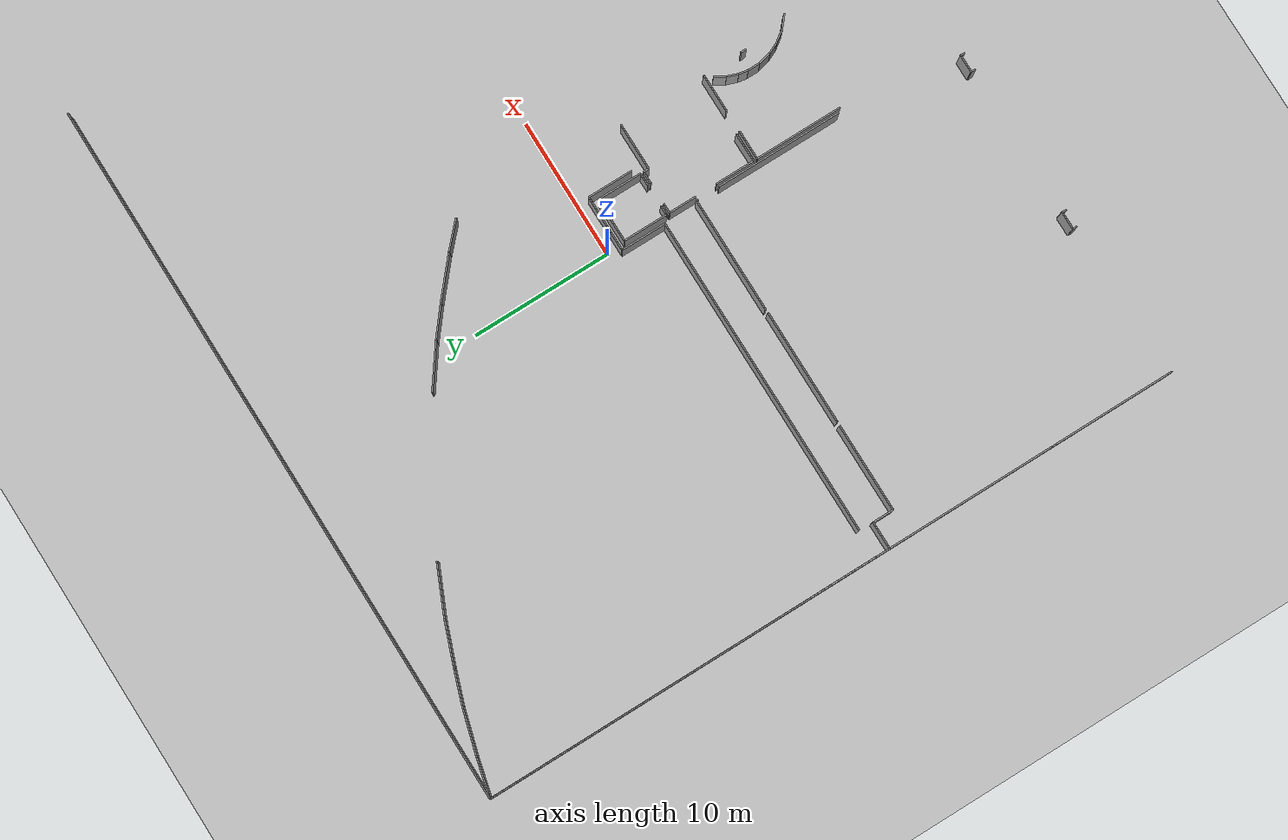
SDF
<sdf version="1.6">
 <world name="default">
  <model name="ground_plane">
   <static>1</static>
   <link name="link">
    <collision name="collision">
     <geometry><plane><normal>0 0 1</normal><size>100 100</size></plane></geometry>
     <surface><friction><ode><mu>100</mu><mu2>50</mu2></ode></friction></surface>
    </collision>
    <visual name="visual">
     <cast_shadows>0</cast_shadows>
     <geometry><plane><normal>0 0 1</normal><size>100 100</size></plane></geometry>
     <material>
      <script><uri>file://media/materials/scripts/gazebo.material</uri><name>Gazebo/Grey</name></script>
     </material>
    </visual>
   </link>
  </model>
  <model name="50041194">
   <static>1</static>
   <link name="Wall_0">
    <collision name="Wall_0_Collision">
     <geometry><box><size>28.5608519399 0.1 2.5</size></box></geometry>
     <pose>14.2804259699 0 1.25 0 0 0</pose>
    </collision>
    <visual name="Wall_0_Visual">
     <pose>14.2804259699 0 1.25 0 0 0</pose>
     <geometry><box><size>28.5608519399 0.1 2.5</size></box></geometry>
     <material>
      <script><uri>file://media/materials/scripts/gazebo.material</uri><name>Gazebo/Grey</name></script>
      <ambient>1 1 1 1</ambient>
     </material>
    </visual>
    <pose>0.00902263282967 -28.5608519399 0 0 0 1.57079632679</pose>
   </link>
   <link name="Wall_1">
    <collision name="Wall_1_Collision">
     <geometry><box><size>2.74540686243 0.1 2.5</size></box></geometry>
     <pose>1.37270343121 0 1.25 0 0 0</pose>
    </collision>
    <visual name="Wall_1_Visual">
     <pose>1.37270343121 0 1.25 0 0 0</pose>
     <geometry><box><size>2.74540686243 0.1 2.5</size></box></geometry>
     <material>
      <script><uri>file://media/materials/scripts/gazebo.material</uri><name>Gazebo/Grey</name></script>
      <ambient>1 1 1 1</ambient>
     </material>
    </visual>
    <pose>0.00902263282967 -0.0 0 0 0 -0.241682561469</pose>
   </link>
   <link name="Wall_2">
    <collision name="Wall_2_Collision">
     <geometry><box><size>3.28572289443 0.1 2.5</size></box></geometry>
     <pose>1.64286144721 0 1.25 0 0 0</pose>
    </collision>
    <visual name="Wall_2_Visual">
     <pose>1.64286144721 0 1.25 0 0 0</pose>
     <geometry><box><size>3.28572289443 0.1 2.5</size></box></geometry>
     <material>
      <script><uri>file://media/materials/scripts/gazebo.material</uri><name>Gazebo/Grey</name></script>
      <ambient>1 1 1 1</ambient>
     </material>
    </visual>
    <pose>2.67463877699 -0.657076412805 0 0 0 -0.278561038296</pose>
   </link>
   <link name="Wall_3">
    <collision name="Wall_3_Collision">
     <geometry><box><size>2.48383758283 0.1 2.5</size></box></geometry>
     <pose>1.24191879142 0 1.25 0 0 0</pose>
    </collision>
    <visual name="Wall_3_Visual">
     <pose>1.24191879142 0 1.25 0 0 0</pose>
     <geometry><box><size>2.48383758283 0.1 2.5</size></box></geometry>
     <material>
      <script><uri>file://media/materials/scripts/gazebo.material</uri><name>Gazebo/Grey</name></script>
      <ambient>1 1 1 1</ambient>
     </material>
    </visual>
    <pose>5.8337039814 -1.56055965739 0 0 0 -0.337022508484</pose>
   </link>
   <link name="Wall_4">
    <collision name="Wall_4_Collision">
     <geometry><box><size>3.13700223776 0.1 2.5</size></box></geometry>
     <pose>1.56850111888 0 1.25 0 0 0</pose>
    </collision>
    <visual name="Wall_4_Visual">
     <pose>1.56850111888 0 1.25 0 0 0</pose>
     <geometry><box><size>3.13700223776 0.1 2.5</size></box></geometry>
     <material>
      <script><uri>file://media/materials/scripts/gazebo.material</uri><name>Gazebo/Grey</name></script>
      <ambient>1 1 1 1</ambient>
     </material>
    </visual>
    <pose>8.17780940641 -2.38191152737 0 0 0 -0.361717875042</pose>
   </link>
   <link name="Wall_5">
    <collision name="Wall_5_Collision">
     <geometry><box><size>3.66875521495 0.1 2.5</size></box></geometry>
     <pose>1.83437760747 0 1.25 0 0 0</pose>
    </collision>
    <visual name="Wall_5_Visual">
     <pose>1.83437760747 0 1.25 0 0 0</pose>
     <geometry><box><size>3.66875521495 0.1 2.5</size></box></geometry>
     <material>
      <script><uri>file://media/materials/scripts/gazebo.material</uri><name>Gazebo/Grey</name></script>
      <ambient>1 1 1 1</ambient>
     </material>
    </visual>
    <pose>11.1118171074 -3.49203847962 0 0 0 -0.420229011525</pose>
   </link>
   <link name="Wall_6">
    <collision name="Wall_6_Collision">
     <geometry><box><size>3.37259636429 0.1 2.5</size></box></geometry>
     <pose>1.68629818215 0 1.25 0 0 0</pose>
    </collision>
    <visual name="Wall_6_Visual">
     <pose>1.68629818215 0 1.25 0 0 0</pose>
     <geometry><box><size>3.37259636429 0.1 2.5</size></box></geometry>
     <material>
      <script><uri>file://media/materials/scripts/gazebo.material</uri><name>Gazebo/Grey</name></script>
      <ambient>1 1 1 1</ambient>
     </material>
    </visual>
    <pose>23.7077937757 -10.3464436848 0 0 0 -0.625089634434</pose>
   </link>
   <link name="Wall_7">
    <collision name="Wall_7_Collision">
     <geometry><box><size>2.4044219948 0.1 2.5</size></box></geometry>
     <pose>1.2022109974 0 1.25 0 0 0</pose>
    </collision>
    <visual name="Wall_7_Visual">
     <pose>1.2022109974 0 1.25 0 0 0</pose>
     <geometry><box><size>2.4044219948 0.1 2.5</size></box></geometry>
     <material>
      <script><uri>file://media/materials/scripts/gazebo.material</uri><name>Gazebo/Grey</name></script>
      <ambient>1 1 1 1</ambient>
     </material>
    </visual>
    <pose>26.4426681577 -12.3199857671 0 0 0 -0.679173434862</pose>
   </link>
   <link name="Wall_8">
    <collision name="Wall_8_Collision">
     <geometry><box><size>3.28038153814 0.1 2.5</size></box></geometry>
     <pose>1.64019076907 0 1.25 0 0 0</pose>
    </collision>
    <visual name="Wall_8_Visual">
     <pose>1.64019076907 0 1.25 0 0 0</pose>
     <geometry><box><size>3.28038153814 0.1 2.5</size></box></geometry>
     <material>
      <script><uri>file://media/materials/scripts/gazebo.material</uri><name>Gazebo/Grey</name></script>
      <ambient>1 1 1 1</ambient>
     </material>
    </visual>
    <pose>28.3135301369 -13.8303236711 0 0 0 -0.709529671184</pose>
   </link>
   <link name="Wall_9">
    <collision name="Wall_9_Collision">
     <geometry><box><size>2.27547560029 0.1 2.5</size></box></geometry>
     <pose>1.13773780015 0 1.25 0 0 0</pose>
    </collision>
    <visual name="Wall_9_Visual">
     <pose>1.13773780015 0 1.25 0 0 0</pose>
     <geometry><box><size>2.27547560029 0.1 2.5</size></box></geometry>
     <material>
      <script><uri>file://media/materials/scripts/gazebo.material</uri><name>Gazebo/Grey</name></script>
      <ambient>1 1 1 1</ambient>
     </material>
    </visual>
    <pose>30.8022518458 -15.9674168583 0 0 0 -0.753563801183</pose>
   </link>
   <link name="Wall_17">
    <collision name="Wall_17_Collision">
     <geometry><box><size>3.21332808072 0.1 2.5</size></box></geometry>
     <pose>1.60666404036 0 1.25 0 0 0</pose>
    </collision>
    <visual name="Wall_17_Visual">
     <pose>1.60666404036 0 1.25 0 0 0</pose>
     <geometry><box><size>3.21332808072 0.1 2.5</size></box></geometry>
     <material>
      <script><uri>file://media/materials/scripts/gazebo.material</uri><name>Gazebo/Grey</name></script>
      <ambient>1 1 1 1</ambient>
     </material>
    </visual>
    <pose>29.0934160196 -28.6099045634 0 0 0 1.57079632679</pose>
   </link>
   <link name="Wall_18">
    <collision name="Wall_18_Collision">
     <geometry><box><size>4.01227586382 0.1 2.5</size></box></geometry>
     <pose>2.00613793191 0 1.25 0 0 0</pose>
    </collision>
    <visual name="Wall_18_Visual">
     <pose>2.00613793191 0 1.25 0 0 0</pose>
     <geometry><box><size>4.01227586382 0.1 2.5</size></box></geometry>
     <material>
      <script><uri>file://media/materials/scripts/gazebo.material</uri><name>Gazebo/Grey</name></script>
      <ambient>1 1 1 1</ambient>
     </material>
    </visual>
    <pose>29.0934160196 -25.3965764827 0 0 0 3.14159265359</pose>
   </link>
   <link name="Wall_19">
    <collision name="Wall_19_Collision">
     <geometry><box><size>3.21231144604 0.1 2.5</size></box></geometry>
     <pose>1.60615572302 0 1.25 0 0 0</pose>
    </collision>
    <visual name="Wall_19_Visual">
     <pose>1.60615572302 0 1.25 0 0 0</pose>
     <geometry><box><size>3.21231144604 0.1 2.5</size></box></geometry>
     <material>
      <script><uri>file://media/materials/scripts/gazebo.material</uri><name>Gazebo/Grey</name></script>
      <ambient>1 1 1 1</ambient>
     </material>
    </visual>
    <pose>25.0811401558 -25.3965764827 0 0 0 -1.57079632679</pose>
   </link>
   <link name="Wall_20">
    <collision name="Wall_20_Collision">
     <geometry><box><size>23.117256103 0.1 2.5</size></box></geometry>
     <pose>11.5586280515 0 1.25 0 0 0</pose>
    </collision>
    <visual name="Wall_20_Visual">
     <pose>11.5586280515 0 1.25 0 0 0</pose>
     <geometry><box><size>23.117256103 0.1 2.5</size></box></geometry>
     <material>
      <script><uri>file://media/materials/scripts/gazebo.material</uri><name>Gazebo/Grey</name></script>
      <ambient>1 1 1 1</ambient>
     </material>
    </visual>
    <pose>25.0811401558 -28.6088879287 0 0 0 3.14159265359</pose>
   </link>
   <link name="Wall_21">
    <collision name="Wall_21_Collision">
     <geometry><box><size>0.0488760077102 0.1 2.5</size></box></geometry>
     <pose>0.0244380038551 0 1.25 0 0 0</pose>
    </collision>
    <visual name="Wall_21_Visual">
     <pose>0.0244380038551 0 1.25 0 0 0</pose>
     <geometry><box><size>0.0488760077102 0.1 2.5</size></box></geometry>
     <material>
      <script><uri>file://media/materials/scripts/gazebo.material</uri><name>Gazebo/Grey</name></script>
      <ambient>1 1 1 1</ambient>
     </material>
    </visual>
    <pose>0.0 -28.6088879287 0 0 0 1.38512893902</pose>
   </link>
   <link name="Wall_22">
    <collision name="Wall_22_Collision">
     <geometry><box><size>12.1464970581 0.1 2.5</size></box></geometry>
     <pose>6.07324852906 0 1.25 0 0 0</pose>
    </collision>
    <visual name="Wall_22_Visual">
     <pose>6.07324852906 0 1.25 0 0 0</pose>
     <geometry><box><size>12.1464970581 0.1 2.5</size></box></geometry>
     <material>
      <script><uri>file://media/materials/scripts/gazebo.material</uri><name>Gazebo/Grey</name></script>
      <ambient>1 1 1 1</ambient>
     </material>
    </visual>
    <pose>0.00419361807576 -41.7663011018 0 0 0 1.57079632679</pose>
   </link>
   <link name="Wall_23">
    <collision name="Wall_23_Collision">
     <geometry><box><size>1.93999313772 0.1 2.5</size></box></geometry>
     <pose>0.969996568858 0 1.25 0 0 0</pose>
    </collision>
    <visual name="Wall_23_Visual">
     <pose>0.969996568858 0 1.25 0 0 0</pose>
     <geometry><box><size>1.93999313772 0.1 2.5</size></box></geometry>
     <material>
      <script><uri>file://media/materials/scripts/gazebo.material</uri><name>Gazebo/Grey</name></script>
      <ambient>1 1 1 1</ambient>
     </material>
    </visual>
    <pose>0.00419361807576 -29.6198040437 0 0 0 0.0</pose>
   </link>
   <link name="Wall_24">
    <collision name="Wall_24_Collision">
     <geometry><box><size>1.49521546301 0.1 2.5</size></box></geometry>
     <pose>0.747607731507 0 1.25 0 0 0</pose>
    </collision>
    <visual name="Wall_24_Visual">
     <pose>0.747607731507 0 1.25 0 0 0</pose>
     <geometry><box><size>1.49521546301 0.1 2.5</size></box></geometry>
     <material>
      <script><uri>file://media/materials/scripts/gazebo.material</uri><name>Gazebo/Grey</name></script>
      <ambient>1 1 1 1</ambient>
     </material>
    </visual>
    <pose>1.94418675579 -29.6198040437 0 0 0 -1.57079632679</pose>
   </link>
   <link name="Wall_25">
    <collision name="Wall_25_Collision">
     <geometry><box><size>6.31444510808 0.1 2.5</size></box></geometry>
     <pose>3.15722255404 0 1.25 0 0 0</pose>
    </collision>
    <visual name="Wall_25_Visual">
     <pose>3.15722255404 0 1.25 0 0 0</pose>
     <geometry><box><size>6.31444510808 0.1 2.5</size></box></geometry>
     <material>
      <script><uri>file://media/materials/scripts/gazebo.material</uri><name>Gazebo/Grey</name></script>
      <ambient>1 1 1 1</ambient>
     </material>
    </visual>
    <pose>1.94418675579 -31.1150195067 0 0 0 0.0</pose>
   </link>
   <link name="Wall_26">
    <collision name="Wall_26_Collision">
     <geometry><box><size>0.0650725618159 0.1 2.5</size></box></geometry>
     <pose>0.032536280908 0 1.25 0 0 0</pose>
    </collision>
    <visual name="Wall_26_Visual">
     <pose>0.032536280908 0 1.25 0 0 0</pose>
     <geometry><box><size>0.0650725618159 0.1 2.5</size></box></geometry>
     <material>
      <script><uri>file://media/materials/scripts/gazebo.material</uri><name>Gazebo/Grey</name></script>
      <ambient>1 1 1 1</ambient>
     </material>
    </visual>
    <pose>0.00521025276079 -41.8313657216 0 0 0 1.58642005542</pose>
   </link>
   <link name="Wall_27">
    <collision name="Wall_27_Collision">
     <geometry><box><size>8.25138834174 0.1 2.5</size></box></geometry>
     <pose>4.12569417087 0 1.25 0 0 0</pose>
    </collision>
    <visual name="Wall_27_Visual">
     <pose>4.12569417087 0 1.25 0 0 0</pose>
     <geometry><box><size>8.25138834174 0.1 2.5</size></box></geometry>
     <material>
      <script><uri>file://media/materials/scripts/gazebo.material</uri><name>Gazebo/Grey</name></script>
      <ambient>1 1 1 1</ambient>
     </material>
    </visual>
    <pose>8.5126634558 -31.1228984255 0 0 0 0.0</pose>
   </link>
   <link name="Wall_28">
    <collision name="Wall_28_Collision">
     <geometry><box><size>8.28862258708 0.1 2.5</size></box></geometry>
     <pose>4.14431129354 0 1.25 0 0 0</pose>
    </collision>
    <visual name="Wall_28_Visual">
     <pose>4.14431129354 0 1.25 0 0 0</pose>
     <geometry><box><size>8.28862258708 0.1 2.5</size></box></geometry>
     <material>
      <script><uri>file://media/materials/scripts/gazebo.material</uri><name>Gazebo/Grey</name></script>
      <ambient>1 1 1 1</ambient>
     </material>
    </visual>
    <pose>16.9969882197 -31.1028198905 0 0 0 0.0</pose>
   </link>
   <link name="Wall_29">
    <collision name="Wall_29_Collision">
     <geometry><box><size>0.112973529374 0.1 2.5</size></box></geometry>
     <pose>0.0564867646872 0 1.25 0 0 0</pose>
    </collision>
    <visual name="Wall_29_Visual">
     <pose>0.0564867646872 0 1.25 0 0 0</pose>
     <geometry><box><size>0.112973529374 0.1 2.5</size></box></geometry>
     <material>
      <script><uri>file://media/materials/scripts/gazebo.material</uri><name>Gazebo/Grey</name></script>
      <ambient>1 1 1 1</ambient>
     </material>
    </visual>
    <pose>25.2856108068 -31.1028198905 0 0 0 -1.57079632679</pose>
   </link>
   <link name="Wall_30">
    <collision name="Wall_30_Collision">
     <geometry><box><size>9.06164618571 0.1 2.5</size></box></geometry>
     <pose>4.53082309286 0 1.25 0 0 0</pose>
    </collision>
    <visual name="Wall_30_Visual">
     <pose>4.53082309286 0 1.25 0 0 0</pose>
     <geometry><box><size>9.06164618571 0.1 2.5</size></box></geometry>
     <material>
      <script><uri>file://media/materials/scripts/gazebo.material</uri><name>Gazebo/Grey</name></script>
      <ambient>1 1 1 1</ambient>
     </material>
    </visual>
    <pose>25.2856108068 -32.793229213 0 0 0 -1.57079632679</pose>
   </link>
   <link name="Wall_31">
    <collision name="Wall_31_Collision">
     <geometry><box><size>2.8155697602 0.1 2.5</size></box></geometry>
     <pose>1.4077848801 0 1.25 0 0 0</pose>
    </collision>
    <visual name="Wall_31_Visual">
     <pose>1.4077848801 0 1.25 0 0 0</pose>
     <geometry><box><size>2.8155697602 0.1 2.5</size></box></geometry>
     <material>
      <script><uri>file://media/materials/scripts/gazebo.material</uri><name>Gazebo/Grey</name></script>
      <ambient>1 1 1 1</ambient>
     </material>
    </visual>
    <pose>25.515116087 -35.5713105692 0 0 0 1.57079632679</pose>
   </link>
   <link name="Wall_32">
    <collision name="Wall_32_Collision">
     <geometry><box><size>1.9688401469 0.1 2.5</size></box></geometry>
     <pose>0.984420073452 0 1.25 0 0 0</pose>
    </collision>
    <visual name="Wall_32_Visual">
     <pose>0.984420073452 0 1.25 0 0 0</pose>
     <geometry><box><size>1.9688401469 0.1 2.5</size></box></geometry>
     <material>
      <script><uri>file://media/materials/scripts/gazebo.material</uri><name>Gazebo/Grey</name></script>
      <ambient>1 1 1 1</ambient>
     </material>
    </visual>
    <pose>25.515116087 -31.1894879974 0 0 0 1.57079632679</pose>
   </link>
   <link name="Wall_33">
    <collision name="Wall_33_Collision">
     <geometry><box><size>0.689913713131 0.1 2.5</size></box></geometry>
     <pose>0.344956856566 0 1.25 0 0 0</pose>
    </collision>
    <visual name="Wall_33_Visual">
     <pose>0.344956856566 0 1.25 0 0 0</pose>
     <geometry><box><size>0.689913713131 0.1 2.5</size></box></geometry>
     <material>
      <script><uri>file://media/materials/scripts/gazebo.material</uri><name>Gazebo/Grey</name></script>
      <ambient>1 1 1 1</ambient>
     </material>
    </visual>
    <pose>25.515116087 -29.2206478505 0 0 0 0.0</pose>
   </link>
   <link name="Wall_34">
    <collision name="Wall_34_Collision">
     <geometry><box><size>0.870112211053 0.1 2.5</size></box></geometry>
     <pose>0.435056105527 0 1.25 0 0 0</pose>
    </collision>
    <visual name="Wall_34_Visual">
     <pose>0.435056105527 0 1.25 0 0 0</pose>
     <geometry><box><size>0.870112211053 0.1 2.5</size></box></geometry>
     <material>
      <script><uri>file://media/materials/scripts/gazebo.material</uri><name>Gazebo/Grey</name></script>
      <ambient>1 1 1 1</ambient>
     </material>
    </visual>
    <pose>27.7640390896 -29.2206478505 0 0 0 0.0</pose>
   </link>
   <link name="Wall_35">
    <collision name="Wall_35_Collision">
     <geometry><box><size>0.395470892478 0.1 2.5</size></box></geometry>
     <pose>0.197735446239 0 1.25 0 0 0</pose>
    </collision>
    <visual name="Wall_35_Visual">
     <pose>0.197735446239 0 1.25 0 0 0</pose>
     <geometry><box><size>0.395470892478 0.1 2.5</size></box></geometry>
     <material>
      <script><uri>file://media/materials/scripts/gazebo.material</uri><name>Gazebo/Grey</name></script>
      <ambient>1 1 1 1</ambient>
     </material>
    </visual>
    <pose>28.6341513007 -29.2206478505 0 0 0 -1.57079632679</pose>
   </link>
   <link name="Wall_36">
    <collision name="Wall_36_Collision">
     <geometry><box><size>3.37357512295 0.1 2.5</size></box></geometry>
     <pose>1.68678756147 0 1.25 0 0 0</pose>
    </collision>
    <visual name="Wall_36_Visual">
     <pose>1.68678756147 0 1.25 0 0 0</pose>
     <geometry><box><size>3.37357512295 0.1 2.5</size></box></geometry>
     <material>
      <script><uri>file://media/materials/scripts/gazebo.material</uri><name>Gazebo/Grey</name></script>
      <ambient>1 1 1 1</ambient>
     </material>
    </visual>
    <pose>28.6341513007 -29.6161187429 0 0 0 0.0</pose>
   </link>
   <link name="Wall_51">
    <collision name="Wall_51_Collision">
     <geometry><box><size>2.06721180201 0.1 2.5</size></box></geometry>
     <pose>1.033605901 0 1.25 0 0 0</pose>
    </collision>
    <visual name="Wall_51_Visual">
     <pose>1.033605901 0 1.25 0 0 0</pose>
     <geometry><box><size>2.06721180201 0.1 2.5</size></box></geometry>
     <material>
      <script><uri>file://media/materials/scripts/gazebo.material</uri><name>Gazebo/Grey</name></script>
      <ambient>1 1 1 1</ambient>
     </material>
    </visual>
    <pose>27.5823156397 -35.5641941264 0 0 0 -3.13815011478</pose>
   </link>
   <link name="Wall_82">
    <collision name="Wall_82_Collision">
     <geometry><box><size>8.46678781563 0.1 2.5</size></box></geometry>
     <pose>4.23339390782 0 1.25 0 0 0</pose>
    </collision>
    <visual name="Wall_82_Visual">
     <pose>4.23339390782 0 1.25 0 0 0</pose>
     <geometry><box><size>8.46678781563 0.1 2.5</size></box></geometry>
     <material>
      <script><uri>file://media/materials/scripts/gazebo.material</uri><name>Gazebo/Grey</name></script>
      <ambient>1 1 1 1</ambient>
     </material>
    </visual>
    <pose>0.00432069741139 -50.5554891919 0 0 0 1.57079632679</pose>
   </link>
   <link name="Wall_83">
    <collision name="Wall_83_Collision">
     <geometry><box><size>6.26704451589 0.1 2.5</size></box></geometry>
     <pose>3.13352225795 0 1.25 0 0 0</pose>
    </collision>
    <visual name="Wall_83_Visual">
     <pose>3.13352225795 0 1.25 0 0 0</pose>
     <geometry><box><size>6.26704451589 0.1 2.5</size></box></geometry>
     <material>
      <script><uri>file://media/materials/scripts/gazebo.material</uri><name>Gazebo/Grey</name></script>
      <ambient>1 1 1 1</ambient>
     </material>
    </visual>
    <pose>25.5167681183 -42.0887013763 0 0 0 1.57079632679</pose>
   </link>
   <link name="Wall_84">
    <collision name="Wall_84_Collision">
     <geometry><box><size>2.12146242899 0.1 2.5</size></box></geometry>
     <pose>1.0607312145 0 1.25 0 0 0</pose>
    </collision>
    <visual name="Wall_84_Visual">
     <pose>1.0607312145 0 1.25 0 0 0</pose>
     <geometry><box><size>2.12146242899 0.1 2.5</size></box></geometry>
     <material>
      <script><uri>file://media/materials/scripts/gazebo.material</uri><name>Gazebo/Grey</name></script>
      <ambient>1 1 1 1</ambient>
     </material>
    </visual>
    <pose>25.5167681183 -35.8216568604 0 0 0 0.0</pose>
   </link>
   <link name="Wall_85">
    <collision name="Wall_85_Collision">
     <geometry><box><size>2.75177593372 0.1 2.5</size></box></geometry>
     <pose>1.37588796686 0 1.25 0 0 0</pose>
    </collision>
    <visual name="Wall_85_Visual">
     <pose>1.37588796686 0 1.25 0 0 0</pose>
     <geometry><box><size>2.75177593372 0.1 2.5</size></box></geometry>
     <material>
      <script><uri>file://media/materials/scripts/gazebo.material</uri><name>Gazebo/Grey</name></script>
      <ambient>1 1 1 1</ambient>
     </material>
    </visual>
    <pose>29.1671220343 -35.8216568604 0 0 0 0.0</pose>
   </link>
   <link name="Wall_87">
    <collision name="Wall_87_Collision">
     <geometry><box><size>0.835013259824 0.1 2.5</size></box></geometry>
     <pose>0.417506629912 0 1.25 0 0 0</pose>
    </collision>
    <visual name="Wall_87_Visual">
     <pose>0.417506629912 0 1.25 0 0 0</pose>
     <geometry><box><size>0.835013259824 0.1 2.5</size></box></geometry>
     <material>
      <script><uri>file://media/materials/scripts/gazebo.material</uri><name>Gazebo/Grey</name></script>
      <ambient>1 1 1 1</ambient>
     </material>
    </visual>
    <pose>31.5066526032 -36.2889275775 0 0 0 -2.10985862166</pose>
   </link>
   <link name="Wall_88">
    <collision name="Wall_88_Collision">
     <geometry><box><size>0.79210523446 0.1 2.5</size></box></geometry>
     <pose>0.39605261723 0 1.25 0 0 0</pose>
    </collision>
    <visual name="Wall_88_Visual">
     <pose>0.39605261723 0 1.25 0 0 0</pose>
     <geometry><box><size>0.79210523446 0.1 2.5</size></box></geometry>
     <material>
      <script><uri>file://media/materials/scripts/gazebo.material</uri><name>Gazebo/Grey</name></script>
      <ambient>1 1 1 1</ambient>
     </material>
    </visual>
    <pose>31.0780140041 -37.0055279511 0 0 0 -1.91715495516</pose>
   </link>
   <link name="Wall_89">
    <collision name="Wall_89_Collision">
     <geometry><box><size>0.638111899444 0.1 2.5</size></box></geometry>
     <pose>0.319055949722 0 1.25 0 0 0</pose>
    </collision>
    <visual name="Wall_89_Visual">
     <pose>0.319055949722 0 1.25 0 0 0</pose>
     <geometry><box><size>0.638111899444 0.1 2.5</size></box></geometry>
     <material>
      <script><uri>file://media/materials/scripts/gazebo.material</uri><name>Gazebo/Grey</name></script>
      <ambient>1 1 1 1</ambient>
     </material>
    </visual>
    <pose>30.80911413 -37.7505940959 0 0 0 -1.77006659153</pose>
   </link>
   <link name="Wall_90">
    <collision name="Wall_90_Collision">
     <geometry><box><size>0.869103938033 0.1 2.5</size></box></geometry>
     <pose>0.434551969017 0 1.25 0 0 0</pose>
    </collision>
    <visual name="Wall_90_Visual">
     <pose>0.434551969017 0 1.25 0 0 0</pose>
     <geometry><box><size>0.869103938033 0.1 2.5</size></box></geometry>
     <material>
      <script><uri>file://media/materials/scripts/gazebo.material</uri><name>Gazebo/Grey</name></script>
      <ambient>1 1 1 1</ambient>
     </material>
    </visual>
    <pose>30.6827972703 -38.3760785859 0 0 0 -1.5664097487</pose>
   </link>
   <link name="Wall_91">
    <collision name="Wall_91_Collision">
     <geometry><box><size>0.917317939303 0.1 2.5</size></box></geometry>
     <pose>0.458658969651 0 1.25 0 0 0</pose>
    </collision>
    <visual name="Wall_91_Visual">
     <pose>0.458658969651 0 1.25 0 0 0</pose>
     <geometry><box><size>0.917317939303 0.1 2.5</size></box></geometry>
     <material>
      <script><uri>file://media/materials/scripts/gazebo.material</uri><name>Gazebo/Grey</name></script>
      <ambient>1 1 1 1</ambient>
     </material>
    </visual>
    <pose>30.6866096504 -39.2451741622 0 0 0 -1.34671796712</pose>
   </link>
   <link name="Wall_92">
    <collision name="Wall_92_Collision">
     <geometry><box><size>0.755249341283 0.1 2.5</size></box></geometry>
     <pose>0.377624670641 0 1.25 0 0 0</pose>
    </collision>
    <visual name="Wall_92_Visual">
     <pose>0.377624670641 0 1.25 0 0 0</pose>
     <geometry><box><size>0.755249341283 0.1 2.5</size></box></geometry>
     <material>
      <script><uri>file://media/materials/scripts/gazebo.material</uri><name>Gazebo/Grey</name></script>
      <ambient>1 1 1 1</ambient>
     </material>
    </visual>
    <pose>30.8904449048 -40.1395585264 0 0 0 -1.1609776013</pose>
   </link>
   <link name="Wall_93">
    <collision name="Wall_93_Collision">
     <geometry><box><size>1.01012345533 0.1 2.5</size></box></geometry>
     <pose>0.505061727663 0 1.25 0 0 0</pose>
    </collision>
    <visual name="Wall_93_Visual">
     <pose>0.505061727663 0 1.25 0 0 0</pose>
     <geometry><box><size>1.01012345533 0.1 2.5</size></box></geometry>
     <material>
      <script><uri>file://media/materials/scripts/gazebo.material</uri><name>Gazebo/Grey</name></script>
      <ambient>1 1 1 1</ambient>
     </material>
    </visual>
    <pose>31.1913687715 -40.8322679849 0 0 0 -0.955504607642</pose>
   </link>
   <link name="Wall_94">
    <collision name="Wall_94_Collision">
     <geometry><box><size>1.09768217904 0.1 2.5</size></box></geometry>
     <pose>0.548841089522 0 1.25 0 0 0</pose>
    </collision>
    <visual name="Wall_94_Visual">
     <pose>0.548841089522 0 1.25 0 0 0</pose>
     <geometry><box><size>1.09768217904 0.1 2.5</size></box></geometry>
     <material>
      <script><uri>file://media/materials/scripts/gazebo.material</uri><name>Gazebo/Grey</name></script>
      <ambient>1 1 1 1</ambient>
     </material>
    </visual>
    <pose>31.7744087634 -41.6571399525 0 0 0 -0.70582603835</pose>
   </link>
   <link name="Wall_106">
    <collision name="Wall_106_Collision">
     <geometry><box><size>0.307277833551 0.1 2.5</size></box></geometry>
     <pose>0.153638916776 0 1.25 0 0 0</pose>
    </collision>
    <visual name="Wall_106_Visual">
     <pose>0.153638916776 0 1.25 0 0 0</pose>
     <geometry><box><size>0.307277833551 0.1 2.5</size></box></geometry>
     <material>
      <script><uri>file://media/materials/scripts/gazebo.material</uri><name>Gazebo/Grey</name></script>
      <ambient>1 1 1 1</ambient>
     </material>
    </visual>
    <pose>24.2908337675 -50.7792759019 0 0 0 1.57079632679</pose>
   </link>
   <link name="Wall_107">
    <collision name="Wall_107_Collision">
     <geometry><box><size>1.26062700944 0.1 2.5</size></box></geometry>
     <pose>0.630313504721 0 1.25 0 0 0</pose>
    </collision>
    <visual name="Wall_107_Visual">
     <pose>0.630313504721 0 1.25 0 0 0</pose>
     <geometry><box><size>1.26062700944 0.1 2.5</size></box></geometry>
     <material>
      <script><uri>file://media/materials/scripts/gazebo.material</uri><name>Gazebo/Grey</name></script>
      <ambient>1 1 1 1</ambient>
     </material>
    </visual>
    <pose>24.2908337675 -50.4719980684 0 0 0 3.14159265359</pose>
   </link>
   <link name="Wall_108">
    <collision name="Wall_108_Collision">
     <geometry><box><size>0.32303567117 0.1 2.5</size></box></geometry>
     <pose>0.161517835585 0 1.25 0 0 0</pose>
    </collision>
    <visual name="Wall_108_Visual">
     <pose>0.161517835585 0 1.25 0 0 0</pose>
     <geometry><box><size>0.32303567117 0.1 2.5</size></box></geometry>
     <material>
      <script><uri>file://media/materials/scripts/gazebo.material</uri><name>Gazebo/Grey</name></script>
      <ambient>1 1 1 1</ambient>
     </material>
    </visual>
    <pose>23.0302067581 -50.4719980684 0 0 0 -1.57079632679</pose>
   </link>
   <link name="Wall_109">
    <collision name="Wall_109_Collision">
     <geometry><box><size>0.318333735751 0.1 2.5</size></box></geometry>
     <pose>0.159166867876 0 1.25 0 0 0</pose>
    </collision>
    <visual name="Wall_109_Visual">
     <pose>0.159166867876 0 1.25 0 0 0</pose>
     <geometry><box><size>0.318333735751 0.1 2.5</size></box></geometry>
     <material>
      <script><uri>file://media/materials/scripts/gazebo.material</uri><name>Gazebo/Grey</name></script>
      <ambient>1 1 1 1</ambient>
     </material>
    </visual>
    <pose>12.2904779454 -50.7950337396 0 0 0 1.57079632679</pose>
   </link>
   <link name="Wall_110">
    <collision name="Wall_110_Collision">
     <geometry><box><size>1.26443938951 0.1 2.5</size></box></geometry>
     <pose>0.632219694755 0 1.25 0 0 0</pose>
    </collision>
    <visual name="Wall_110_Visual">
     <pose>0.632219694755 0 1.25 0 0 0</pose>
     <geometry><box><size>1.26443938951 0.1 2.5</size></box></geometry>
     <material>
      <script><uri>file://media/materials/scripts/gazebo.material</uri><name>Gazebo/Grey</name></script>
      <ambient>1 1 1 1</ambient>
     </material>
    </visual>
    <pose>12.2904779454 -50.4767000038 0 0 0 3.14159265359</pose>
   </link>
   <link name="Wall_111">
    <collision name="Wall_111_Collision">
     <geometry><box><size>0.302321739462 0.1 2.5</size></box></geometry>
     <pose>0.151160869731 0 1.25 0 0 0</pose>
    </collision>
    <visual name="Wall_111_Visual">
     <pose>0.151160869731 0 1.25 0 0 0</pose>
     <geometry><box><size>0.302321739462 0.1 2.5</size></box></geometry>
     <material>
      <script><uri>file://media/materials/scripts/gazebo.material</uri><name>Gazebo/Grey</name></script>
      <ambient>1 1 1 1</ambient>
     </material>
    </visual>
    <pose>11.0260385559 -50.4767000038 0 0 0 -1.57079632679</pose>
   </link>
   <link name="Wall_112">
    <collision name="Wall_112_Collision">
     <geometry><box><size>0.223590340075 0.1 2.5</size></box></geometry>
     <pose>0.111795170038 0 1.25 0 0 0</pose>
    </collision>
    <visual name="Wall_112_Visual">
     <pose>0.111795170038 0 1.25 0 0 0</pose>
     <geometry><box><size>0.223590340075 0.1 2.5</size></box></geometry>
     <material>
      <script><uri>file://media/materials/scripts/gazebo.material</uri><name>Gazebo/Grey</name></script>
      <ambient>1 1 1 1</ambient>
     </material>
    </visual>
    <pose>0.00940387083656 -50.7790217433 0 0 0 1.59353260153</pose>
   </link>
   <link name="Wall_113">
    <collision name="Wall_113_Collision">
     <geometry><box><size>3.16541917119 0.1 2.5</size></box></geometry>
     <pose>1.58270958559 0 1.25 0 0 0</pose>
    </collision>
    <visual name="Wall_113_Visual">
     <pose>1.58270958559 0 1.25 0 0 0</pose>
     <geometry><box><size>3.16541917119 0.1 2.5</size></box></geometry>
     <material>
      <script><uri>file://media/materials/scripts/gazebo.material</uri><name>Gazebo/Grey</name></script>
      <ambient>1 1 1 1</ambient>
     </material>
    </visual>
    <pose>25.5114307862 -28.9967340611 0 0 0 1.57079632679</pose>
   </link>
   <link name="Wall_114">
    <collision name="Wall_114_Collision">
     <geometry><box><size>3.1383512727 0.1 2.5</size></box></geometry>
     <pose>1.56917563635 0 1.25 0 0 0</pose>
    </collision>
    <visual name="Wall_114_Visual">
     <pose>1.56917563635 0 1.25 0 0 0</pose>
     <geometry><box><size>3.1383512727 0.1 2.5</size></box></geometry>
     <material>
      <script><uri>file://media/materials/scripts/gazebo.material</uri><name>Gazebo/Grey</name></script>
      <ambient>1 1 1 1</ambient>
     </material>
    </visual>
    <pose>25.5114307862 -25.8313148899 0 0 0 0.0</pose>
   </link>
   <link name="Wall_115">
    <collision name="Wall_115_Collision">
     <geometry><box><size>3.16999402727 0.1 2.5</size></box></geometry>
     <pose>1.58499701364 0 1.25 0 0 0</pose>
    </collision>
    <visual name="Wall_115_Visual">
     <pose>1.58499701364 0 1.25 0 0 0</pose>
     <geometry><box><size>3.16999402727 0.1 2.5</size></box></geometry>
     <material>
      <script><uri>file://media/materials/scripts/gazebo.material</uri><name>Gazebo/Grey</name></script>
      <ambient>1 1 1 1</ambient>
     </material>
    </visual>
    <pose>28.6497820589 -25.8313148899 0 0 0 -1.57079632679</pose>
   </link>
   <link name="Wall_116">
    <collision name="Wall_116_Collision">
     <geometry><box><size>0.901500806954 0.1 2.5</size></box></geometry>
     <pose>0.450750403477 0 1.25 0 0 0</pose>
    </collision>
    <visual name="Wall_116_Visual">
     <pose>0.450750403477 0 1.25 0 0 0</pose>
     <geometry><box><size>0.901500806954 0.1 2.5</size></box></geometry>
     <material>
      <script><uri>file://media/materials/scripts/gazebo.material</uri><name>Gazebo/Grey</name></script>
      <ambient>1 1 1 1</ambient>
     </material>
    </visual>
    <pose>28.6497820589 -29.0013089172 0 0 0 3.14159265359</pose>
   </link>
   <link name="Wall_117">
    <collision name="Wall_117_Collision">
     <geometry><box><size>0.68827688607 0.1 2.5</size></box></geometry>
     <pose>0.344138443035 0 1.25 0 0 0</pose>
    </collision>
    <visual name="Wall_117_Visual">
     <pose>0.344138443035 0 1.25 0 0 0</pose>
     <geometry><box><size>0.68827688607 0.1 2.5</size></box></geometry>
     <material>
      <script><uri>file://media/materials/scripts/gazebo.material</uri><name>Gazebo/Grey</name></script>
      <ambient>1 1 1 1</ambient>
     </material>
    </visual>
    <pose>26.199692468 -29.0013089172 0 0 0 3.13494577954</pose>
   </link>
   <link name="Wall_127">
    <collision name="Wall_127_Collision">
     <geometry><box><size>0.382254641573 0.1 2.5</size></box></geometry>
     <pose>0.191127320786 0 1.25 0 0 0</pose>
    </collision>
    <visual name="Wall_127_Visual">
     <pose>0.191127320786 0 1.25 0 0 0</pose>
     <geometry><box><size>0.382254641573 0.1 2.5</size></box></geometry>
     <material>
      <script><uri>file://media/materials/scripts/gazebo.material</uri><name>Gazebo/Grey</name></script>
      <ambient>1 1 1 1</ambient>
     </material>
    </visual>
    <pose>31.9129252392 -39.0121106607 0 0 0 1.57079632679</pose>
   </link>
   <link name="Wall_170">
    <collision name="Wall_170_Collision">
     <geometry><box><size>50.874331245 0.1 2.5</size></box></geometry>
     <pose>25.4371656225 0 1.25 0 0 0</pose>
    </collision>
    <visual name="Wall_170_Visual">
     <pose>25.4371656225 0 1.25 0 0 0</pose>
     <geometry><box><size>50.874331245 0.1 2.5</size></box></geometry>
     <material>
      <script><uri>file://media/materials/scripts/gazebo.material</uri><name>Gazebo/Grey</name></script>
      <ambient>1 1 1 1</ambient>
     </material>
    </visual>
    <pose>0.0 -50.874331245 0 0 0 1.57079632679</pose>
   </link>
   <link name="Wall_171">
    <collision name="Wall_171_Collision">
     <geometry><box><size>51.3518699724 0.1 2.5</size></box></geometry>
     <pose>25.6759349862 0 1.25 0 0 0</pose>
    </collision>
    <visual name="Wall_171_Visual">
     <pose>25.6759349862 0 1.25 0 0 0</pose>
     <geometry><box><size>51.3518699724 0.1 2.5</size></box></geometry>
     <material>
      <script><uri>file://media/materials/scripts/gazebo.material</uri><name>Gazebo/Grey</name></script>
      <ambient>1 1 1 1</ambient>
     </material>
    </visual>
   </link>
   <pose>-25.65 24.674331245 0 0 0 0</pose>
  </model>
 </world>
</sdf>
